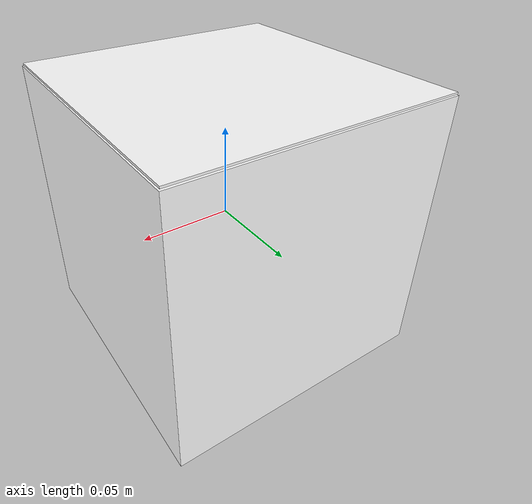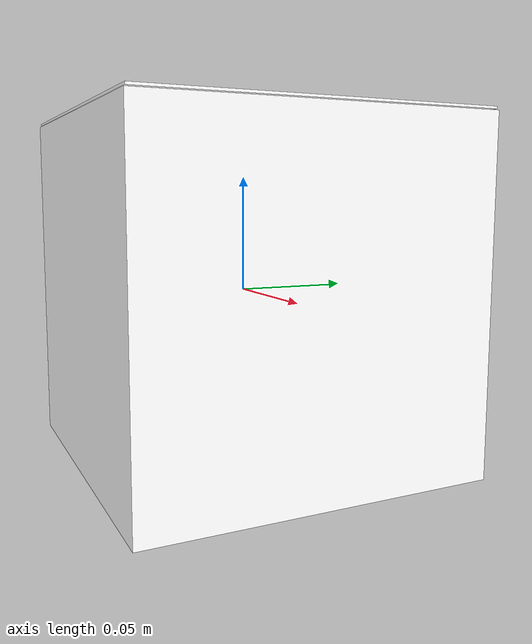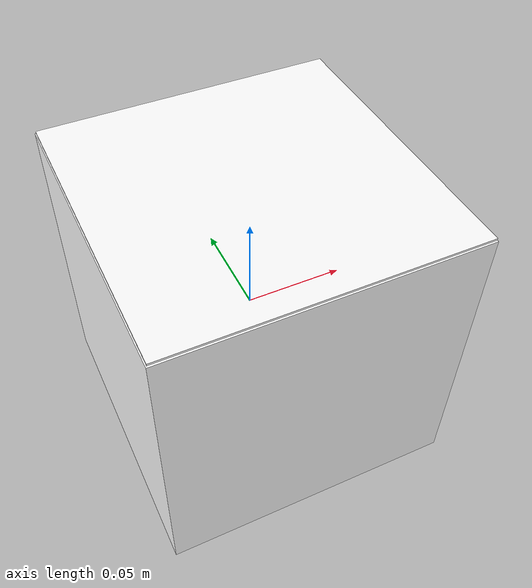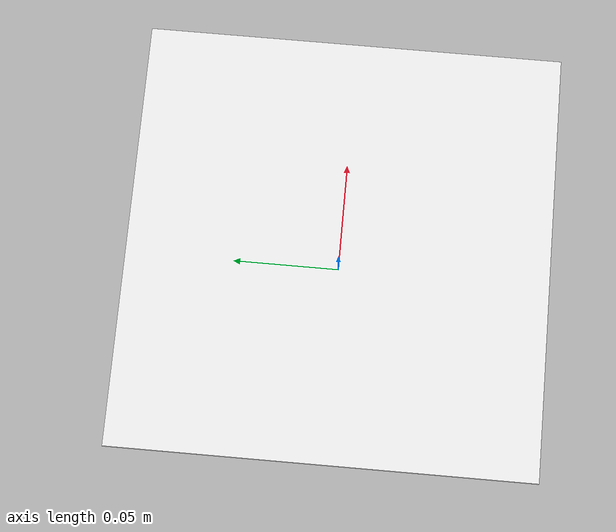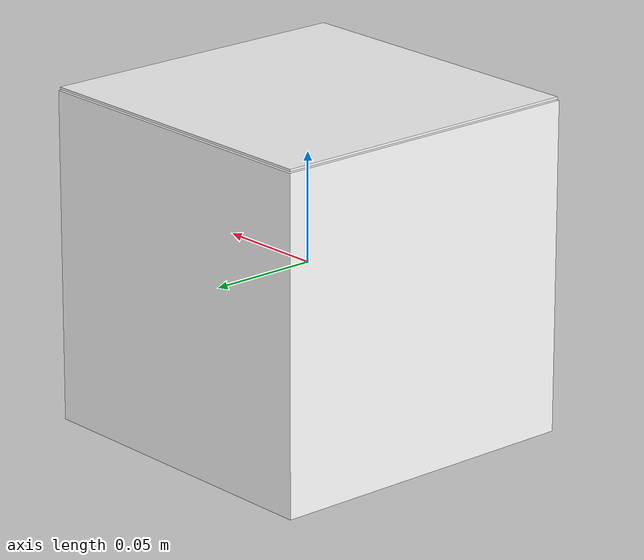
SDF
<?xml version='1.0' encoding='UTF-8'?>
<sdf version='1.9'>
  <model name='aruco_tags'>
    <static>false</static>
    <link name='base_link'>

      <inertial>
        <mass>1.0</mass>
        <inertia>
          <ixx>0.00375</ixx>
          <ixy>0</ixy>
          <ixz>0</ixz>
          <iyy>0.00375</iyy>
          <iyz>0</iyz>
          <izz>0.00375</izz>
        </inertia>
      </inertial>

      <collision name='collision'>
        <geometry>
          <box>
            <size>0.15 0.15 0.15</size>
          </box>
        </geometry>
      </collision>

      <visual name='cube_visual'>
        <geometry>
          <box>
            <size>0.15 0.15 0.15</size>
          </box>
        </geometry>
        <material>
          <ambient>1 1 1 1</ambient>
          <diffuse>1 1 1 1</diffuse>
          <specular>0.5 0.5 0.5 1</specular>
        </material>
      </visual>

      <visual name='tag_visual'>
        <pose>0 0 0.076 0 0 0</pose>
        <geometry>
          <box>
            <size>0.149 0.149 0.001</size>
          </box>
        </geometry>
        <material>
          <ambient>1 1 1 1</ambient>
          <diffuse>1 1 1 1</diffuse>
          <specular>0 0 0 1</specular>
          <pbr>
            <metal>
              <albedo_map>model://aruco_tags/arucotag.png</albedo_map>
            </metal>
          </pbr>
        </material>
      </visual>
    </link>
  </model>
</sdf>
